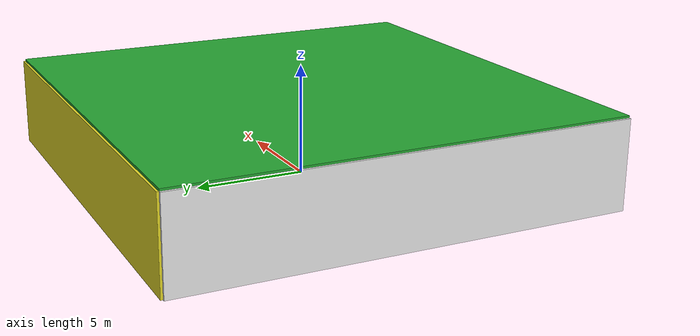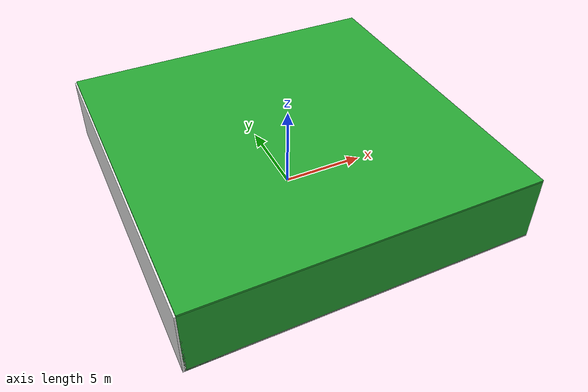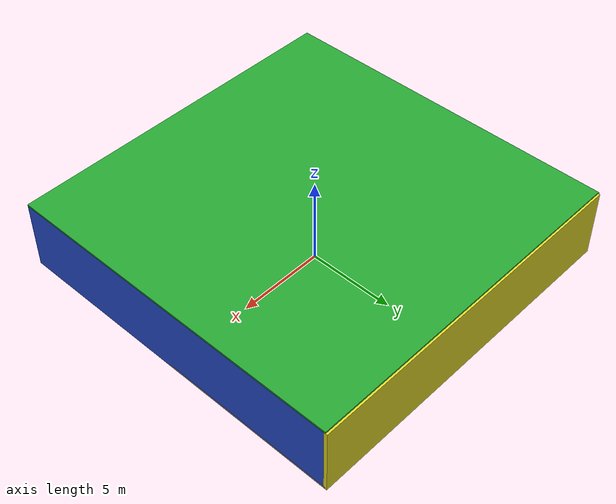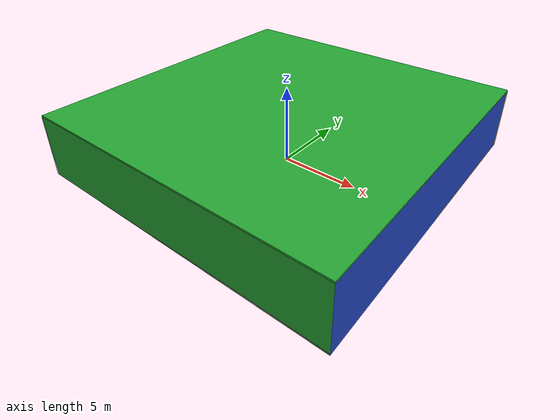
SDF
<sdf version="1.4">
 <world name="default">
  <physics type="ode">
   <max_step_size>0.001</max_step_size>
   <real_time_factor>1</real_time_factor>
   <real_time_update_rate>1000</real_time_update_rate>
   <gravity>0 0 -9.8</gravity>
  </physics>
  <scene><ambient>0.4 0.4 0.4 1</ambient><background>0.7 0.7 0.7 1</background><shadows>1</shadows></scene>
  <model name="Surrounding">
   <static>1</static>
   <link name="Ceiling">
    <collision name="Ceiling_Collision"><geometry><box><size>20 20 0.1</size></box></geometry></collision>
    <visual name="Ceiling_Visual">
     <geometry><box><size>20 20 0.1</size></box></geometry>
     <material>
      <script><uri>file://media/materials/scripts/gazebo.material</uri><name>Gazebo/Green</name></script>
     </material>
    </visual>
    <pose>0 0 4.05 0 0 0</pose>
   </link>
   <link name="Wall_South">
    <collision name="Wall_South_Collision">
     <geometry><box><size>20 0 4</size></box></geometry>
     <pose>0 0 2 0 -0 0</pose>
    </collision>
    <visual name="Wall_South_Visual">
     <pose>0 0 2 0 -0 0</pose>
     <geometry><box><size>20 0 4</size></box></geometry>
     <material>
      <script><uri>file://media/materials/scripts/gazebo.material</uri><name>Gazebo/GreenGlow</name></script>
     </material>
    </visual>
    <velocity_decay><linear>0</linear><angular>0</angular></velocity_decay>
    <pose>0 -10 0 0 -0 0</pose>
   </link>
   <link name="Wall_East">
    <collision name="Wall_21_Collision">
     <geometry><box><size>20 0 4</size></box></geometry>
     <pose>0 0 2 0 -0 0</pose>
    </collision>
    <visual name="Wall_21_Visual">
     <pose>0 0 2 0 -0 0</pose>
     <geometry><box><size>20 0 4</size></box></geometry>
     <material>
      <script><uri>file://media/materials/scripts/gazebo.material</uri><name>Gazebo/Blue</name></script>
     </material>
    </visual>
    <velocity_decay><linear>0</linear><angular>0</angular></velocity_decay>
    <pose>10 0 0 0 -0 1.5708</pose>
   </link>
   <link name="Wall_North">
    <collision name="Wall_22_Collision">
     <geometry><box><size>20 0.2 4</size></box></geometry>
     <pose>0 0 2 0 -0 0</pose>
    </collision>
    <visual name="Wall_22_Visual">
     <pose>0 0 2 0 -0 0</pose>
     <geometry><box><size>20 0.2 4</size></box></geometry>
     <material>
      <script><uri>file://media/materials/scripts/gazebo.material</uri><name>Gazebo/Yellow</name></script>
     </material>
    </visual>
    <velocity_decay><linear>0</linear><angular>0</angular></velocity_decay>
    <pose>0 10 0 0 -0 0</pose>
   </link>
   <link name="Wall_West">
    <collision name="Wall_23_Collision">
     <geometry><box><size>20 0.2 4</size></box></geometry>
     <pose>0 0 2 0 -0 0</pose>
    </collision>
    <visual name="Wall_23_Visual">
     <pose>0 0 2 0 -0 0</pose>
     <geometry><box><size>20 0.2 4</size></box></geometry>
     <material>
      <script><uri>file://media/materials/scripts/gazebo.material</uri><name>Gazebo/White</name></script>
     </material>
    </visual>
    <velocity_decay><linear>0</linear><angular>0</angular></velocity_decay>
    <pose>-10 0 0 0 0 -1.5708</pose>
   </link>
   <link name="Ground_link">
    <collision name="collision">
     <pose>0 0 .05 0 -0 0</pose>
     <geometry><box><size>20 20 0.1</size></box></geometry>
    </collision>
    <visual name="visual">
     <pose>0 0 .05 0 -0 0</pose>
     <geometry><box><size>20 20 0.1</size></box></geometry>
     <material>
      <script><uri>file://media/materials/scripts/gazebo.material</uri><name>Gazebo/Grey</name></script>
     </material>
    </visual>
   </link>
   <static>1</static>
  </model>
  <spherical_coordinates>
   <surface_model>EARTH_WGS84</surface_model>
   <latitude_deg>0</latitude_deg>
   <longitude_deg>0</longitude_deg>
   <elevation>0</elevation>
   <heading_deg>0</heading_deg>
  </spherical_coordinates>
  <light name="lightball_0" type="diffuse">
   <diffuse>0.8 0.8 0.8 1</diffuse>
   <specular>0.2 0.2 0.2 1</specular>
   <attenuation>
    <range>100</range>
    <constant>0.7</constant>
    <linear>0.01</linear>
    <quadratic>0.001</quadratic>
   </attenuation>
   <direction>-0.5 0.1 -0.9</direction>
   <pose>-5.89248604817 2.99778246614 0.88042645369 0 0 0</pose>
  </light>
  <light name="lightball_1" type="diffuse">
   <diffuse>0.8 0.8 0.8 1</diffuse>
   <specular>0.2 0.2 0.2 1</specular>
   <attenuation>
    <range>100</range>
    <constant>0.7</constant>
    <linear>0.01</linear>
    <quadratic>0.001</quadratic>
   </attenuation>
   <direction>-0.5 0.1 -0.9</direction>
   <pose>-1.91918446228 -9.87947490646 1.94912941237 0 0 0</pose>
  </light>
  <light name="lightball_2" type="diffuse">
   <diffuse>0.8 0.8 0.8 1</diffuse>
   <specular>0.2 0.2 0.2 1</specular>
   <attenuation>
    <range>100</range>
    <constant>0.7</constant>
    <linear>0.01</linear>
    <quadratic>0.001</quadratic>
   </attenuation>
   <direction>-0.5 0.1 -0.9</direction>
   <pose>7.56712214926 -1.14896110599 1.72687278042 0 0 0</pose>
  </light>
  <light name="lightball_3" type="diffuse">
   <diffuse>0.8 0.8 0.8 1</diffuse>
   <specular>0.2 0.2 0.2 1</specular>
   <attenuation>
    <range>100</range>
    <constant>0.7</constant>
    <linear>0.01</linear>
    <quadratic>0.001</quadratic>
   </attenuation>
   <direction>-0.5 0.1 -0.9</direction>
   <pose>5.01069290947 -1.88133570506 2.25524564047 0 0 0</pose>
  </light>
  <light name="lightball_4" type="diffuse">
   <diffuse>0.8 0.8 0.8 1</diffuse>
   <specular>0.2 0.2 0.2 1</specular>
   <attenuation>
    <range>100</range>
    <constant>0.7</constant>
    <linear>0.01</linear>
    <quadratic>0.001</quadratic>
   </attenuation>
   <direction>-0.5 0.1 -0.9</direction>
   <pose>-9.36957652177 3.45353249041 3.23915484601 0 0 0</pose>
  </light>
  <light name="lightball_5" type="diffuse">
   <diffuse>0.8 0.8 0.8 1</diffuse>
   <specular>0.2 0.2 0.2 1</specular>
   <attenuation>
    <range>100</range>
    <constant>0.7</constant>
    <linear>0.01</linear>
    <quadratic>0.001</quadratic>
   </attenuation>
   <direction>-0.5 0.1 -0.9</direction>
   <pose>2.14131748441 -5.57622610854 2.35854355366 0 0 0</pose>
  </light>
  <light name="lightball_6" type="diffuse">
   <diffuse>0.8 0.8 0.8 1</diffuse>
   <specular>0.2 0.2 0.2 1</specular>
   <attenuation>
    <range>100</range>
    <constant>0.7</constant>
    <linear>0.01</linear>
    <quadratic>0.001</quadratic>
   </attenuation>
   <direction>-0.5 0.1 -0.9</direction>
   <pose>-7.51530048079 4.8726564567 1.62166329744 0 0 0</pose>
  </light>
  <light name="lightball_7" type="diffuse">
   <diffuse>0.8 0.8 0.8 1</diffuse>
   <specular>0.2 0.2 0.2 1</specular>
   <attenuation>
    <range>100</range>
    <constant>0.7</constant>
    <linear>0.01</linear>
    <quadratic>0.001</quadratic>
   </attenuation>
   <direction>-0.5 0.1 -0.9</direction>
   <pose>1.71579614964 -6.11644104209 3.59778927601 0 0 0</pose>
  </light>
  <light name="lightball_8" type="diffuse">
   <diffuse>0.8 0.8 0.8 1</diffuse>
   <specular>0.2 0.2 0.2 1</specular>
   <attenuation>
    <range>100</range>
    <constant>0.7</constant>
    <linear>0.01</linear>
    <quadratic>0.001</quadratic>
   </attenuation>
   <direction>-0.5 0.1 -0.9</direction>
   <pose>1.25390571473 -1.402334695 0.973463997892 0 0 0</pose>
  </light>
  <light name="lightball_9" type="diffuse">
   <diffuse>0.8 0.8 0.8 1</diffuse>
   <specular>0.2 0.2 0.2 1</specular>
   <attenuation>
    <range>100</range>
    <constant>0.7</constant>
    <linear>0.01</linear>
    <quadratic>0.001</quadratic>
   </attenuation>
   <direction>-0.5 0.1 -0.9</direction>
   <pose>-6.3392267096 5.07436076078 2.30007847332 0 0 0</pose>
  </light>
  <light name="lightball_10" type="diffuse">
   <diffuse>0.8 0.8 0.8 1</diffuse>
   <specular>0.2 0.2 0.2 1</specular>
   <attenuation>
    <range>100</range>
    <constant>0.7</constant>
    <linear>0.01</linear>
    <quadratic>0.001</quadratic>
   </attenuation>
   <direction>-0.5 0.1 -0.9</direction>
   <pose>-3.77431900829 8.88773645985 0.663896292305 0 0 0</pose>
  </light>
  <include><uri>model://cabinet</uri><pose>-7.74454538723 2.11233189766 0 0 0 0.748014515709</pose></include>
  <include><uri>model://cabinet</uri><pose>-5.05158663987 4.24924263183 0 0 0 2.82299529074</pose></include>
  <include><uri>model://cabinet</uri><pose>-5.23279881301 7.92732375879 0 0 0 2.47752952617</pose></include>
  <include>
   <uri>model://robocup_3Dsim_goal</uri>
   <pose>-1.53931757647 7.10755419178 0 0 0 2.80858954357</pose>
  </include>
  <include><uri>model://cabinet</uri><pose>0.958929690281 -7.78431232008 0 0 0 3.06887149918</pose></include>
  <include><uri>model://table</uri><pose>3.99303152711 7.8770135184 0 0 0 0.0994595952194</pose></include>
 </world>
</sdf>

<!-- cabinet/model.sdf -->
<sdf version="1.5">
  <model name="cabinet">
    <static>true</static>
    <link name="cabinet_bottom_plate">
      <inertial>
        <pose>0 0 -1 0 0 0</pose>
        <inertia>
          <ixx>2.050000</ixx>
          <ixy>0</ixy>
          <ixz>0</ixz>
          <iyy>2.050000</iyy>
          <iyz>0</iyz>
          <izz>2.050000</izz>
        </inertia>
        <mass>25.000000</mass>
      </inertial>
      <collision name="cabinet_bottom_plate_geom">
        <pose>0 0 0.010000 0 0 0</pose>
        <geometry>
          <box>
            <size>0.450000 0.450000 0.020000</size>
          </box>
        </geometry>
      </collision>
      <visual name="cabinet_bottom_plate_geom_visual">
        <pose>0 0 0.010000 0 0 0</pose>
        <geometry>
          <box>
            <size>0.450000 0.450000 0.020000</size>
          </box>
        </geometry>
        <material>
          <script>
            <uri>model://media/materials/scripts/gazebo.material</uri>
            <name>Gazebo/Wood</name>
          </script>
        </material>
      </visual>
      <collision name="cabinet_bottom_plate_geom_cabinet_back_plate">
        <pose>0.235000 0 0.510000 0 0 0</pose>
        <geometry>
          <box>
            <size>0.020000 0.450000 1.020000</size>
          </box>
        </geometry>
      </collision>
      <visual name="cabinet_bottom_plate_geom_cabinet_back_plate_visual">
        <pose>0.235000 0 0.510000 0 0 0</pose>
        <geometry>
          <box>
            <size>0.020000 0.450000 1.020000</size>
          </box>
        </geometry>
        <material>
          <script>
            <uri>model://media/materials/scripts/gazebo.material</uri>
            <name>Gazebo/Wood</name>
          </script>
        </material>
      </visual>
      <collision name="cabinet_bottom_plate_geom_cabinet_left_plate">
        <pose>0 0.235000 0.510000 0 0 0</pose>
        <geometry>
          <box>
            <size>0.450000 0.020000 1.020000</size>
          </box>
        </geometry>
      </collision>
      <visual name="cabinet_bottom_plate_geom_cabinet_left_plate_visual">
        <pose>0 0.235000 0.510000 0 0 0</pose>
        <geometry>
          <box>
            <size>0.450000 0.020000 1.020000</size>
          </box>
        </geometry>
        <material>
          <script>
            <uri>model://media/materials/scripts/gazebo.material</uri>
            <name>Gazebo/Wood</name>
          </script>
        </material>
      </visual>
      <collision name="cabinet_bottom_plate_geom_cabinet_middle_plate">
        <pose>0 0 0.510000 0 0 0</pose>
        <geometry>
          <box>
            <size>0.450000 0.450000 0.020000</size>
          </box>
        </geometry>
      </collision>
      <visual name="cabinet_bottom_plate_geom_cabinet_middle_plate_visual">
        <pose>0 0 0.510000 0 0 0</pose>
        <geometry>
          <box>
            <size>0.450000 0.450000 0.020000</size>
          </box>
        </geometry>
        <material>
          <script>
            <uri>model://media/materials/scripts/gazebo.material</uri>
            <name>Gazebo/Wood</name>
          </script>
        </material>
      </visual>
      <collision name="cabinet_bottom_plate_geom_cabinet_right_plate">
        <pose>0 -0.235000 0.510000 0 0 0</pose>
        <geometry>
          <box>
            <size>0.450000 0.020000 1.020000</size>
          </box>
        </geometry>
      </collision>
      <visual name="cabinet_bottom_plate_geom_cabinet_right_plate_visual">
        <pose>0 -0.235000 0.510000 0 0 0</pose>
        <geometry>
          <box>
            <size>0.450000 0.020000 1.020000</size>
          </box>
        </geometry>
        <material>
          <script>
            <uri>model://media/materials/scripts/gazebo.material</uri>
            <name>Gazebo/Wood</name>
          </script>
        </material>
      </visual>
      <collision name="cabinet_bottom_plate_geom_cabinet_top_plate">
        <pose>0 0 1.010000 0 0 0</pose>
        <geometry>
          <box>
            <size>0.450000 0.450000 0.020000</size>
          </box>
        </geometry>
      </collision>
      <visual name="cabinet_bottom_plate_geom_cabinet_top_plate_visual">
        <pose>0 0 1.010000 0 0 0</pose>
        <geometry>
          <box>
            <size>0.450000 0.450000 0.020000</size>
          </box>
        </geometry>
        <material>
          <script>
            <uri>model://media/materials/scripts/gazebo.material</uri>
            <name>Gazebo/Wood</name>
          </script>
        </material>
      </visual>
    </link>
  </model>
</sdf>

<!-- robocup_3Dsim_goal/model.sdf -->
<sdf version="1.5">
  <model name="robocup_3d_goal">
    <static>true</static>
    <link name="left_post">
      <pose>0 1.05 0.45 0 0 0</pose>
      <collision name="collision">
        <geometry>
          <cylinder>
            <radius>0.05</radius>
            <length>0.9</length>
          </cylinder>
        </geometry>
      </collision>
      <visual name="visual">
        <geometry>
          <cylinder>
            <radius>0.05</radius>
            <length>0.9</length>
          </cylinder>
        </geometry>
        <material>
          <script>
            <uri>file://media/materials/scripts/gazebo.material</uri>
            <name>Gazebo/ZincYellow</name>
          </script>
        </material>
      </visual>
    </link>
    <link name="left_support_horiz_lower">
      <pose>0.30 1.05 0.01 0 0 0</pose>
      <collision name="collision">
        <geometry>
          <box>
            <size>0.50 0.02 0.02</size>
          </box>
        </geometry>
      </collision>
      <visual name="visual">
        <geometry>
          <box>
            <size>0.50 0.02 0.02</size>
          </box>
        </geometry>
        <material>
          <script>
            <uri>file://media/materials/scripts/gazebo.material</uri>
            <name>Gazebo/White</name>
          </script>
        </material>
      </visual>
    </link>
    <link name="left_support_horiz_upper">
      <pose>0.30 1.05 0.79 0 0 0</pose>
      <collision name="collision">
        <geometry>
          <box>
            <size>0.50 0.02 0.02</size>
          </box>
        </geometry>
      </collision>
      <visual name="visual">
        <geometry>
          <box>
            <size>0.50 0.02 0.02</size>
          </box>
        </geometry>
        <material>
          <script>
            <uri>file://media/materials/scripts/gazebo.material</uri>
            <name>Gazebo/White</name>
          </script>
        </material>
      </visual>
    </link>
    <link name="left_support_vertical">
      <pose>0.56 1.05 0.4 0 1.5708 0</pose>
      <collision name="collision">
        <geometry>
          <box>
            <size>0.80 0.02 0.02</size>
          </box>
        </geometry>
      </collision>
      <visual name="visual">
        <geometry>
          <box>
            <size>0.80 0.02 0.02</size>
          </box>
        </geometry>
        <material>
          <script>
            <uri>file://media/materials/scripts/gazebo.material</uri>
            <name>Gazebo/White</name>
          </script>
        </material>
      </visual>
    </link>
    <link name="right_support_horiz_lower">
      <pose>0.30 -1.05 0.01 0 0 0</pose>
      <collision name="collision">
        <geometry>
          <box>
            <size>0.50 0.02 0.02</size>
          </box>
        </geometry>
      </collision>
      <visual name="visual">
        <geometry>
          <box>
            <size>0.50 0.02 0.02</size>
          </box>
        </geometry>
        <material>
          <script>
            <uri>file://media/materials/scripts/gazebo.material</uri>
            <name>Gazebo/White</name>
          </script>
        </material>
      </visual>
    </link>
    <link name="right_support_horiz_upper">
      <pose>0.30 -1.05 0.79 0 0 0</pose>
      <collision name="collision">
        <geometry>
          <box>
            <size>0.50 0.02 0.02</size>
          </box>
        </geometry>
      </collision>
      <visual name="visual">
        <geometry>
          <box>
            <size>0.50 0.02 0.02</size>
          </box>
        </geometry>
        <material>
          <script>
            <uri>file://media/materials/scripts/gazebo.material</uri>
            <name>Gazebo/White</name>
          </script>
        </material>
      </visual>
    </link>
    <link name="right_support_vertical">
      <pose>0.56 -1.05 0.4 0 1.5708 0</pose>
      <collision name="collision">
        <geometry>
          <box>
            <size>0.80 0.02 0.02</size>
          </box>
        </geometry>
      </collision>
      <visual name="visual">
        <geometry>
          <box>
            <size>0.80 0.02 0.02</size>
          </box>
        </geometry>
        <material>
          <script>
            <uri>file://media/materials/scripts/gazebo.material</uri>
            <name>Gazebo/White</name>
          </script>
        </material>
      </visual>
    </link>
    <link name="center_support_horiz_lower">
      <pose>0.56 0 0.01 0 1.5708 0</pose>
      <collision name="collision">
        <geometry>
          <box>
            <size>0.02 2.08 0.02</size>
          </box>
        </geometry>
      </collision>
      <visual name="visual">
        <geometry>
          <box>
            <size>0.02 2.08 0.02</size>
          </box>
        </geometry>
        <material>
          <script>
            <uri>file://media/materials/scripts/gazebo.material</uri>
            <name>Gazebo/White</name>
          </script>
        </material>
      </visual>
    </link>
    <link name="center_support_horiz_upper">
      <pose>0.56 0 0.79 0 1.5708 0</pose>
      <collision name="collision">
        <geometry>
          <box>
            <size>0.02 2.08 0.02</size>
          </box>
        </geometry>
      </collision>
      <visual name="visual">
        <geometry>
          <box>
            <size>0.02 2.08 0.02</size>
          </box>
        </geometry>
        <material>
          <script>
            <uri>file://media/materials/scripts/gazebo.material</uri>
            <name>Gazebo/White</name>
          </script>
        </material>
      </visual>
    </link>
    <link name="right_post">
      <pose>0 -1.05 0.45 0 0 0</pose>
      <collision name="collision">
        <geometry>
          <cylinder>
            <radius>0.05</radius>
            <length>0.9</length>
          </cylinder>
        </geometry>
      </collision>
      <visual name="visual">
        <geometry>
          <cylinder>
            <radius>0.05</radius>
            <length>0.9</length>
          </cylinder>
        </geometry>
        <material>
          <script>
            <uri>file://media/materials/scripts/gazebo.material</uri>
            <name>Gazebo/ZincYellow</name>
          </script>
        </material>
      </visual>
    </link>
    <link name="crossbar">
      <pose>0 0 0.85 1.57 1.57 0</pose>
      <collision name="collision">
        <geometry>
          <cylinder>
            <radius>0.05</radius>
            <length>2.0</length>
          </cylinder>
        </geometry>
      </collision>
      <visual name="visual">
        <geometry>
          <cylinder>
            <radius>0.05</radius>
            <length>2.0</length>
          </cylinder>
        </geometry>
        <material>
          <script>
            <uri>file://media/materials/scripts/gazebo.material</uri>
            <name>Gazebo/ZincYellow</name>
          </script>
        </material>
      </visual>
    </link>
    <link name="center_net">
      <pose>0.56 0 0.40 0 0 0</pose>
      <collision name="collision">
        <geometry>
          <box>
            <size>0.01 2.1 0.80</size>
          </box>
        </geometry>
      </collision>
      <visual name="visual">
        <geometry>
          <box>
            <size>0.01 2.1 0.80</size>
          </box>
        </geometry>
        <material>
          <script>
            <uri>model://../model_source/models/robocup09_spl_field/materials/scripts/</uri>
            <uri>model://../model_source/models/robocup09_spl_field/materials/textures/</uri>
            <name>RoboCup/Net</name>
          </script>
        </material>
      </visual>
    </link>
    <link name="left_net">
      <pose>0.30 1.05 0.40 0 0 0</pose>
      <collision name="collision">
        <geometry>
          <box>
            <size>0.50 0.01 0.76</size>
          </box>
        </geometry>
      </collision>
      <visual name="visual">
        <geometry>
          <box>
            <size>0.50 0.01 0.76</size>
          </box>
        </geometry>
        <material>
          <script>
            <uri>model://../model_source/models/robocup09_spl_field/materials/scripts/</uri>
            <uri>model://../model_source/models/robocup09_spl_field/materials/textures/</uri>
            <name>RoboCup/Net</name>
          </script>
        </material>
      </visual>
    </link>
    <link name="right_net">
      <pose>0.30 -1.05 0.40 0 0 0</pose>
      <collision name="collision">
        <geometry>
          <box>
            <size>0.50 0.01 0.76</size>
          </box>
        </geometry>
      </collision>
      <visual name="visual">
        <geometry>
          <box>
            <size>0.50 0.01 0.76</size>
          </box>
        </geometry>
        <material>
          <script>
            <uri>model://../model_source/models/robocup09_spl_field/materials/scripts/</uri>
            <uri>model://../model_source/models/robocup09_spl_field/materials/textures/</uri>
            <name>RoboCup/Net</name>
          </script>
        </material>
      </visual>
    </link>
  </model>
</sdf>

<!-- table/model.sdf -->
<sdf version="1.5">
  <model name="table">
    <static>true</static>
    <link name="link">
      <collision name="surface">
        <pose>0 0 1.0 0 0 0</pose>
        <geometry>
          <box>
            <size>1.5 0.8 0.03</size>
          </box>
        </geometry>
        <surface>
          <friction>
            <ode>
              <mu>0.6</mu>
              <mu2>0.6</mu2>
            </ode>
          </friction>
        </surface>
      </collision>
      <visual name="visual1">
        <pose>0 0 1.0 0 0 0</pose>
        <geometry>
          <box>
            <size>1.5 0.8 0.03</size>
          </box>
        </geometry>
        <material>
          <script>
            <uri>model://media/materials/scripts/gazebo.material</uri>
            <name>Gazebo/Wood</name>
          </script>
        </material>
      </visual>
      <collision name="front_left_leg">
        <pose>0.68 0.38 0.5 0 0 0</pose>
        <geometry>
          <cylinder>
            <radius>0.02</radius>
            <length>1.0</length>
          </cylinder>
        </geometry>
      </collision>
      <visual name="front_left_leg">
        <pose>0.68 0.38 0.5 0 0 0</pose>
        <geometry>
          <cylinder>
            <radius>0.02</radius>
            <length>1.0</length>
          </cylinder>
        </geometry>
        <material>
          <script>
            <uri>model://media/materials/scripts/gazebo.material</uri>
            <name>Gazebo/Grey</name>
          </script>
        </material>
      </visual>
      <collision name="front_right_leg">
        <pose>0.68 -0.38 0.5 0 0 0</pose>
        <geometry>
          <cylinder>
            <radius>0.02</radius>
            <length>1.0</length>
          </cylinder>
        </geometry>
      </collision>
      <visual name="front_right_leg">
        <pose>0.68 -0.38 0.5 0 0 0</pose>
        <geometry>
          <cylinder>
            <radius>0.02</radius>
            <length>1.0</length>
          </cylinder>
        </geometry>
        <material>
          <script>
            <uri>model://media/materials/scripts/gazebo.material</uri>
            <name>Gazebo/Grey</name>
          </script>
        </material>
      </visual>
      <collision name="back_right_leg">
        <pose>-0.68 -0.38 0.5 0 0 0</pose>
        <geometry>
          <cylinder>
            <radius>0.02</radius>
            <length>1.0</length>
          </cylinder>
        </geometry>
      </collision>
      <visual name="back_right_leg">
        <pose>-0.68 -0.38 0.5 0 0 0</pose>
        <geometry>
          <cylinder>
            <radius>0.02</radius>
            <length>1.0</length>
          </cylinder>
        </geometry>
        <material>
          <script>
            <uri>model://media/materials/scripts/gazebo.material</uri>
            <name>Gazebo/Grey</name>
          </script>
        </material>
      </visual>
      <collision name="back_left_leg">
        <pose>-0.68 0.38 0.5 0 0 0</pose>
        <geometry>
          <cylinder>
            <radius>0.02</radius>
            <length>1.0</length>
          </cylinder>
        </geometry>
      </collision>
      <visual name="back_left_leg">
        <pose>-0.68 0.38 0.5 0 0 0</pose>
        <geometry>
          <cylinder>
            <radius>0.02</radius>
            <length>1.0</length>
          </cylinder>
        </geometry>
        <material>
          <script>
            <uri>model://media/materials/scripts/gazebo.material</uri>
            <name>Gazebo/Grey</name>
          </script>
        </material>
      </visual>
    </link>
  </model>
</sdf>
